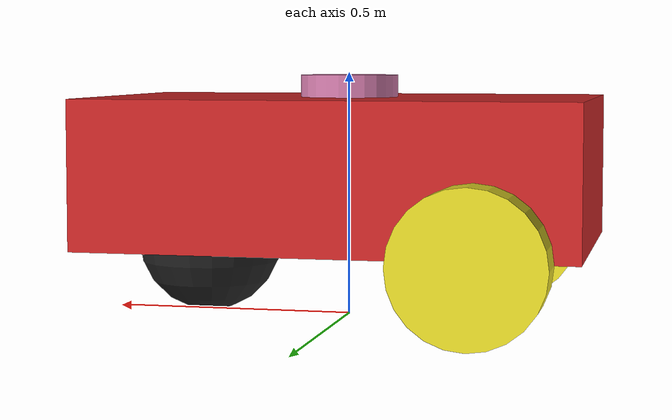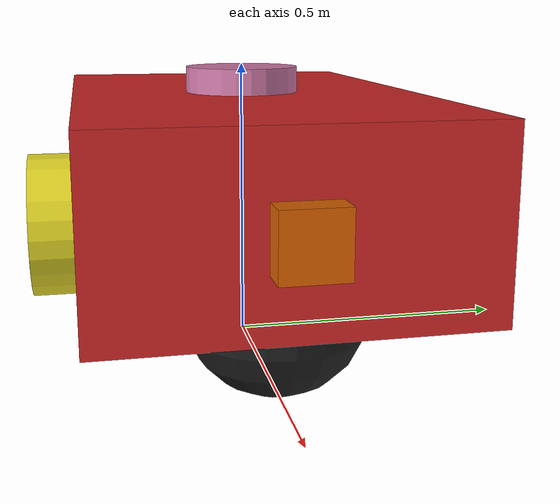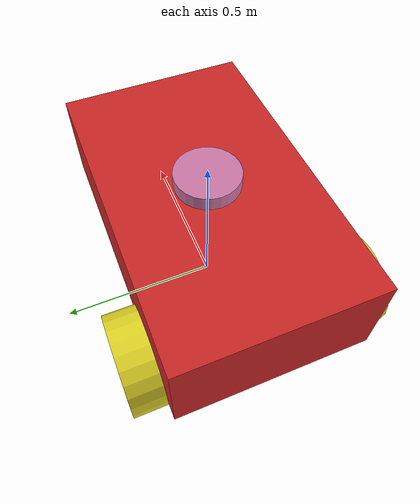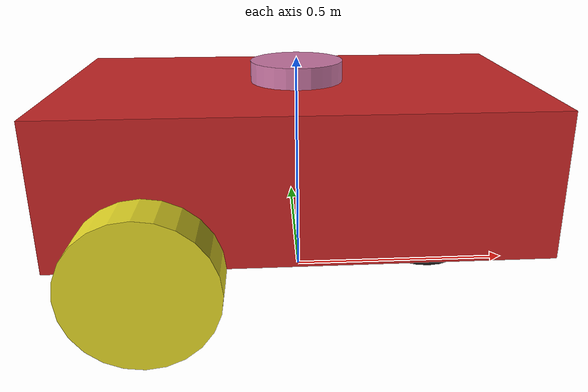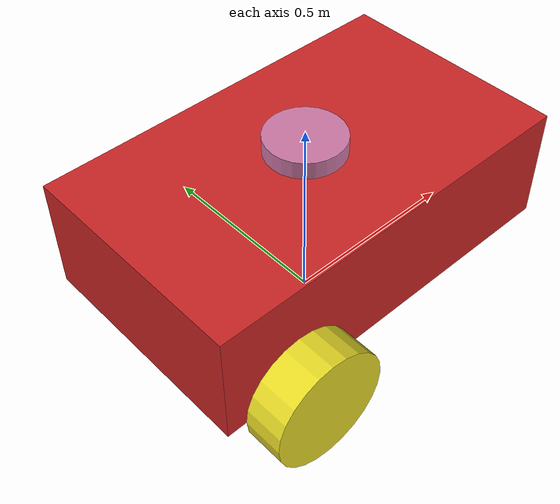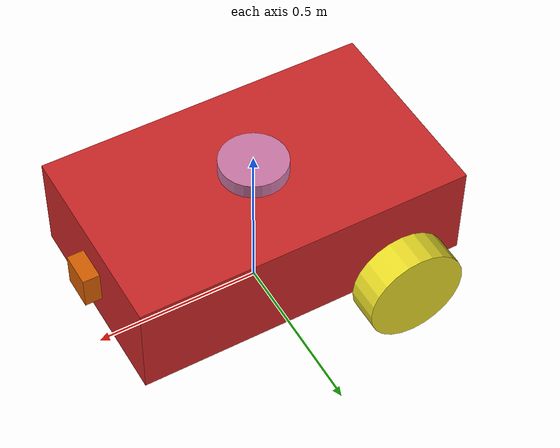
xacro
<?xml version="1.0"?>
<robot xmlns:xacro="http://www.ros.org/wiki/xacro" name="differential_drive_robot">

  <!--########## DECLARING CONSTANTS ################-->
  <xacro:property name="pi_const" value="3.14159265"/>
  <!-- body dimensions -->
  <xacro:property name="a" value="1"/>
  <xacro:property name="b" value="0.6"/>
  <xacro:property name="c" value="0.3"/>
  <!-- Wheels and caster -->
  <xacro:property name="r" value="0.15"/>
  <xacro:property name="d" value="0.1"/>

  <!-- COM -->
  <xacro:property name="s1" value="${c/2 + r}"/>
  <xacro:property name="s2" value="${2*r}"/>
  <xacro:property name="s3" value="${2*r}"/>
  <xacro:property name="s4" value="${b/2 + d/2}"/>

  <!-- Mass and Inertia -->
  <!-- densities -->
  <xacro:property name="d1" value="2710.0"/>
  <xacro:property name="d2" value="2710.0"/>
  <xacro:property name="d3" value="2710.0"/>

  <!-- mass -->
  <xacro:property name="m1" value="${d1*a*b*c}"/>
  <xacro:property name="m2" value="${d2*pi_const*r*r*d}"/>
  <xacro:property name="m3" value="${d3*(4/3)*pi_const*r*r*r}"/>

  <!-- MI of Root Body -->
  <xacro:property name="Ix_body" value="${(1/12)*m1*(b*b + c*c)}"/>
  <xacro:property name="Iy_body" value="${(1/12)*m1*(a*a + c*c)}"/>
  <xacro:property name="Iz_body" value="${(1/12)*m1*(a*a + b*b)}"/>

  <!-- Wheel Inertia -->
  <xacro:property name="Iz_wheel" value="${0.5*m2*r*r}"/>
  <xacro:property name="I_wheel" value="${(1.0/12.0)*m2*(3.0*r*r + d*d)}"/>

  <!-- Caster Inertia -->
  <xacro:property name="I_caster" value="${(2.0/5.0)*m3*r*r}"/>

  <xacro:macro name="inertia_body">
    <inertial>
      <origin rpy="0 0 0" xyz="0 0 ${s1}"/>
      <mass value="${m1}"/>
      <inertia ixx="${Ix_body}" ixy="0.0" ixz="0.0" iyy="${Iy_body}" iyz="0" izz="${Iz_body}"/>
    </inertial>
  </xacro:macro>

  <xacro:macro name="inertia_wheel">
    <inertial>
      <origin rpy="1.570795 0 0" xyz="0 0 0"/>
      <mass value="${m2}"/>
      <inertia ixx="${I_wheel}" ixy="0.0" ixz="0.0" iyy="${I_wheel}" iyz="0" izz="${Iz_wheel}"/>
    </inertial>
  </xacro:macro>

  <xacro:macro name="inertia_caster">
    <inertial>
      <origin rpy="0 0 0" xyz="0 0 0"/>
      <mass value="${m3}"/>
      <inertia ixx="${I_caster}" ixy="0.0" ixz="0.0" iyy="${I_caster}" iyz="0" izz="${I_caster}"/>
    </inertial>
  </xacro:macro>

  <xacro:include filename="$(find robot_description)/model/robot.gazebo"/>

  <!-- Base footprint -->
  <link name="base_footprint"/>

  <joint name="body_link_joint" type="fixed">
    <parent link="base_footprint"/>
    <child link="body_link"/>
  </joint>

  <!-- Body -->
  <link name="body_link">
    <visual>
      <geometry>
        <box size="${a} ${b} ${c}"/>
      </geometry>
      <origin xyz="0.0 0.0 ${s1}" rpy="0.0 0.0 0.0"/>
    </visual>
    <collision>
      <geometry>
        <box size="${a} ${b} ${c}"/>
      </geometry>
      <origin xyz="0.0 0.0 ${s1}" rpy="0.0 0.0 0.0"/>
    </collision>
    <xacro:inertia_body/>
  </link>

  <!-- Wheels -->
  <joint name="wheel1_joint" type="continuous">
    <parent link="body_link"/>
    <child link="wheel1_link"/>
    <origin xyz="${-s2} ${-s4} ${r}" rpy="0 0 0"/>
    <axis xyz="0 1 0"/>
    <limit effort="50000" velocity="10"/>
    <dynamics damping="1.0" friction="1.0"/>
  </joint>

  <link name="wheel1_link">
    <visual>
      <origin rpy="1.570795 0 0" xyz="0 0 0"/>
      <geometry>
        <cylinder length="${d}" radius="${r}"/>
      </geometry>
    </visual>
    <collision>
      <origin rpy="1.570795 0 0" xyz="0 0 0"/>
      <geometry>
        <cylinder length="${d}" radius="${r}"/>
      </geometry>
    </collision>
    <xacro:inertia_wheel/>
  </link>

  <joint name="wheel2_joint" type="continuous">
    <parent link="body_link"/>
    <child link="wheel2_link"/>
    <origin xyz="${-s2} ${s4} ${r}" rpy="0 0 0"/>
    <axis xyz="0 1 0"/>
    <limit effort="50000" velocity="10"/>
    <dynamics damping="1.0" friction="1.0"/>
  </joint>

  <link name="wheel2_link">
    <visual>
      <origin rpy="1.570795 0 0" xyz="0 0 0"/>
      <geometry>
        <cylinder length="${d}" radius="${r}"/>
      </geometry>
    </visual>
    <collision>
      <origin rpy="1.570795 0 0" xyz="0 0 0"/>
      <geometry>
        <cylinder length="${d}" radius="${r}"/>
      </geometry>
    </collision>
    <xacro:inertia_wheel/>
  </link>

  <!-- Caster -->
  <joint name="caster_joint" type="fixed">
    <parent link="body_link"/>
    <child link="caster_link"/>
    <origin xyz="${s3} 0 ${r}" rpy="0 0 0"/>
    <axis xyz="0 1 0"/>
  </joint>

  <link name="caster_link">
    <visual>
      <origin rpy="0 0 0" xyz="0 0 0"/>
      <geometry>
        <sphere radius="${r}"/>
      </geometry>
    </visual>
    <collision>
      <origin rpy="0 0 0" xyz="0 0 0"/>
      <geometry>
        <sphere radius="${r}"/>
      </geometry>
    </collision>
    <xacro:inertia_caster/>
  </link>

  <!-- Camera -->
  <joint name="camera_joint" type="fixed">
    <parent link="body_link"/>
    <!-- Position above the body (z offset = body height / 2 + 0.05) -->
    <child link="camera_link"/>
    <origin xyz="0.5 0 0.3" rpy="0 0 0"/>
    <axis xyz="0 0 1"/>
  </joint>

  <link name="camera_link">
    <inertial>
      <mass value="0.1"/>
      <inertia ixx="0.000166667" ixy="0" ixz="0" iyy="0.000166667" iyz="0" izz="0.000166667"/>
    </inertial>

    <visual name="visual">
      <geometry>
        <box size="0.1 0.1 0.1"/>
      </geometry>
    </visual>

    <collision name="collision">
      <geometry>
        <box size="0.1 0.1 0.1"/>
      </geometry>
    </collision>

  </link>

    <!-- lidar -->
  <joint name="lidar_joint" type="fixed">
    <parent link="body_link"/>
    <!-- Position above the body (z offset = body height / 2 + 0.05) -->
    <child link="lidar_link"/>
    <origin xyz="0 0 0.47" rpy="0 0 0"/>
    <axis xyz="0 0 1"/>
  </joint>

  <link name="lidar_link">
    <inertial>
      <mass value="0.1"/>
      <inertia ixx="0.000416667" ixy="0" ixz="0" iyy="0.000416667" iyz="0" izz="0.0008"/>
    </inertial>

    <visual name="visual">
      <geometry>
        <cylinder radius="0.1" length="0.05"/>
      </geometry>
    </visual>

    <collision name="collision">
      <geometry>
        <cylinder radius="0.04" length="0.05"/>
      </geometry>
    </collision>
  </link>

</robot>
